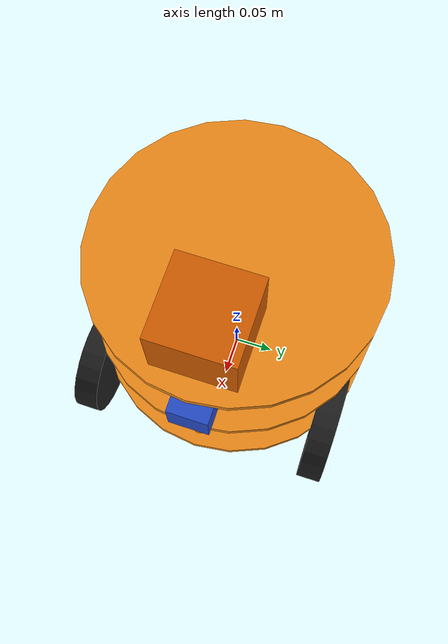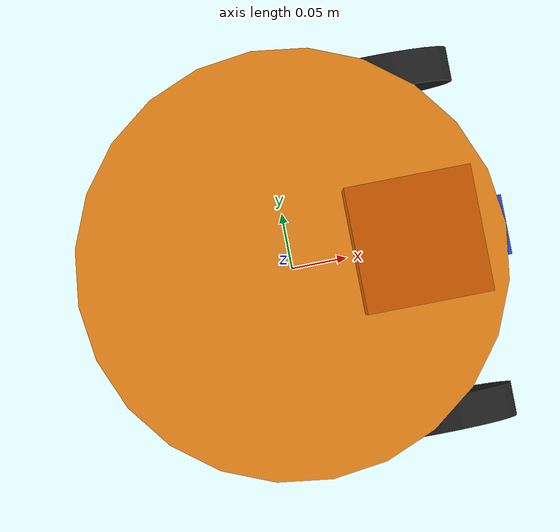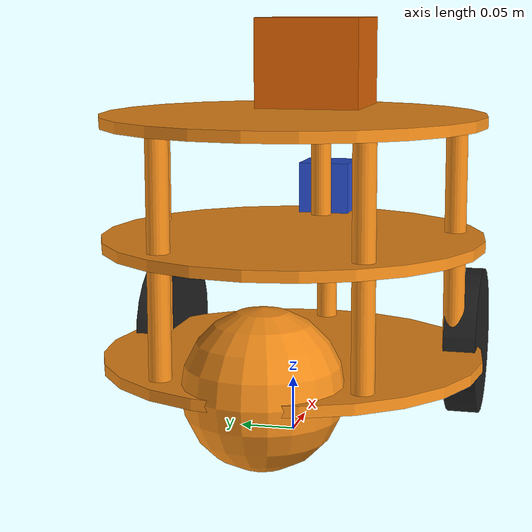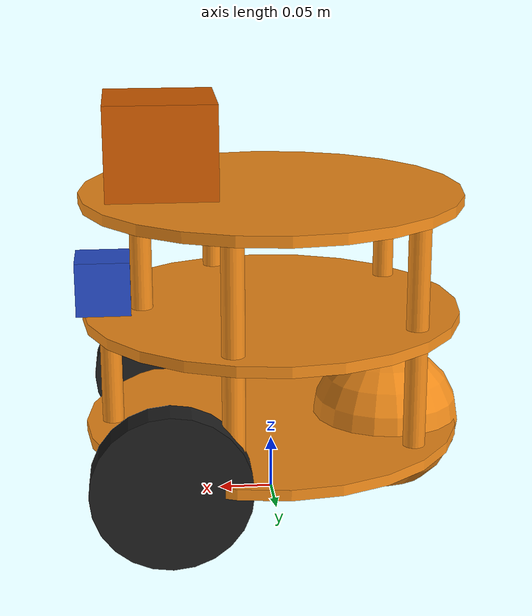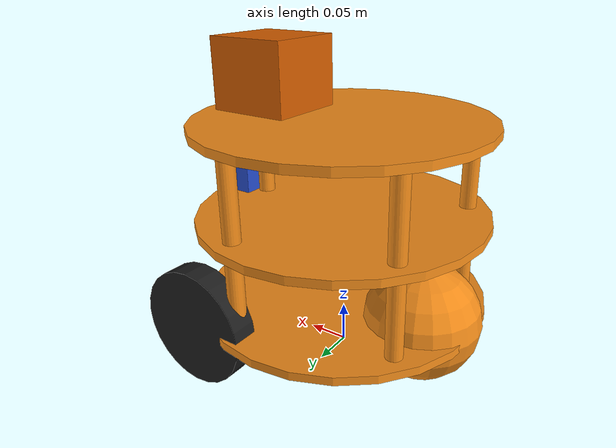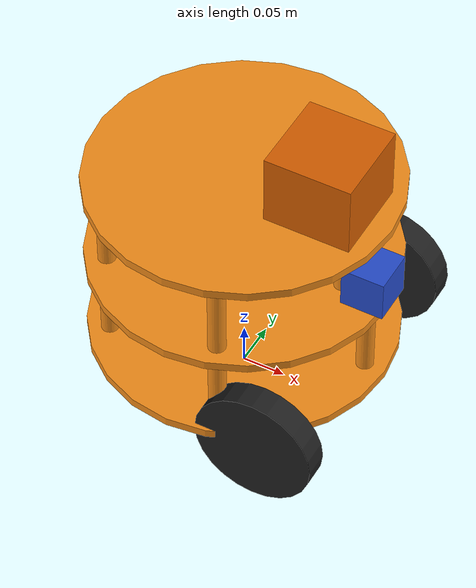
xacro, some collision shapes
<?xml version='1.0'?>

<robot name="my_robot" xmlns:xacro="http://www.ros.org/wiki/xacro">

  <xacro:include filename="$(find my_robot)/urdf/my_robot.gazebo" />
  <link name="robot_footprint"></link>

  <joint name="robot_footprint_joint" type="fixed">
    <origin xyz="0 0 0.07" rpy="0 0 0" />
    <parent link="robot_footprint"/>
    <child link="chassis" />
  </joint>

  <gazebo reference="chassis">
    <material>Gazebo/Orange</material>
  </gazebo>

  <link name='chassis'>
    <pose>0 0 0.07 0 0 0</pose>

    <inertial>
      <mass value="5.0"/>
      <origin xyz="0.0 0 0" rpy=" 0 0 0"/>
      <inertia
          ixx="0.1" ixy="0" ixz="0"
          iyy="0.1" iyz="0"
          izz="0.1"
      />
    </inertial>

    <collision name='collision'>
      <origin xyz="0 0 0.11" rpy=" 0 0 0"/>
      <geometry>
        <cylinder radius="0.175" length="0.23"/>
      </geometry>
    </collision>

    <visual name='chassis_visual'>
      <origin xyz="0 0 0" rpy=" 0 0 0"/>
      <geometry>
        <cylinder radius="0.175" length="0.01"/>
      </geometry>
    </visual>

    <visual name='chassis_visual'>
      <origin xyz="0 0 .11" rpy=" 0 0 0"/>
      <geometry>
        <cylinder radius="0.175" length="0.01"/>
      </geometry>
    </visual>

    <visual name='chassis_visual'>
      <origin xyz="0 0 .22" rpy=" 0 0 0"/>
      <geometry>
        <cylinder radius="0.175" length="0.01"/>
      </geometry>
    </visual>

    <visual name='chassis_visual'>
      <origin xyz="0.15 0.00 .055" rpy=" 0 0 0"/>
      <geometry>
        <cylinder radius="0.01" length="0.10"/>
      </geometry>
    </visual>

    <visual name='chassis_visual'>
      <origin xyz="0.046 0.143 .055" rpy=" 0 0 0"/>
      <geometry>
        <cylinder radius="0.01" length="0.10"/>
      </geometry>
    </visual>

    <visual name='chassis_visual'>
      <origin xyz="-0.121 0.088 .055" rpy=" 0 0 0"/>
      <geometry>
        <cylinder radius="0.01" length="0.10"/>
      </geometry>
    </visual>

    <visual name='chassis_visual'>
      <origin xyz="-0.121 -0.088 .055" rpy=" 0 0 0"/>
      <geometry>
        <cylinder radius="0.01" length="0.10"/>
      </geometry>
    </visual>

    <visual name='chassis_visual'>
      <origin xyz="0.046 -0.143 .055" rpy=" 0 0 0"/>
      <geometry>
        <cylinder radius="0.01" length="0.10"/>
      </geometry>
    </visual>

    <visual name='chassis_visual'>
      <origin xyz="0.12 0.00 .165" rpy=" 0 0 0"/>
      <geometry>
        <cylinder radius="0.01" length="0.10"/>
      </geometry>
    </visual>

    <visual name='chassis_visual'>
      <origin xyz="0.046 0.143 .165" rpy=" 0 0 0"/>
      <geometry>
        <cylinder radius="0.01" length="0.10"/>
      </geometry>
    </visual>

    <visual name='chassis_visual'>
      <origin xyz="-0.121 0.088 .165" rpy=" 0 0 0"/>
      <geometry>
        <cylinder radius="0.01" length="0.10"/>
      </geometry>
    </visual>

    <visual name='chassis_visual'>
      <origin xyz="-0.121 -0.088 .165" rpy=" 0 0 0"/>
      <geometry>
        <cylinder radius="0.01" length="0.10"/>
      </geometry>
    </visual>

    <visual name='chassis_visual'>
      <origin xyz="0.046 -0.143 .165" rpy=" 0 0 0"/>
      <geometry>
        <cylinder radius="0.01" length="0.10"/>
      </geometry>
    </visual>

    <collision name='one_caster_collision'>
      <origin xyz="-0.11 0 0" rpy=" 0 0 0"/>
      <geometry>
        <sphere radius="0.07"/>
      </geometry>
    </collision>

    <visual name='one_caster_visual'>
      <origin xyz="-0.11 0 0.0" rpy=" 0 0 0"/>
      <geometry>
        <sphere radius="0.07"/>
      </geometry>
    </visual>
  </link>

  <gazebo reference="left_wheel">
    <material>Gazebo/Black</material>
  </gazebo>

  <link name="left_wheel">
    <inertial>
      <mass value="5.0"/>
      <origin xyz="0.0 0 0" rpy="0 1.5707 1.5707"/>
      <inertia
          ixx="0.1" ixy="0" ixz="0"
          iyy="0.1" iyz="0"
          izz="0.1"
      />
    </inertial>

    <collision name='left_wheel_collision'>
      <origin xyz="0 0 0" rpy="0 1.5707 1.5707"/>
      <geometry>
	<cylinder radius="0.07" length="0.03"/>
      </geometry>
    </collision>

    <visual name='left_wheel_visual'>
      <origin xyz="0 0 0" rpy="0 1.5707 1.5707"/>
      <geometry>
	<cylinder radius="0.07" length="0.03"/>
      </geometry>
    </visual>
  </link>

  <gazebo reference="right_wheel">
    <material>Gazebo/Black</material>
  </gazebo>

  <link name="right_wheel">
    <inertial>
      <mass value="5.0"/>
      <origin xyz="0.0 0 0" rpy=" 0 1.5707 1.5707"/>
      <inertia
          ixx="0.1" ixy="0" ixz="0"
          iyy="0.1" iyz="0"
          izz="0.1"
      />
    </inertial>

    <collision name='right_wheel_collision'>
      <origin xyz="0 0 0" rpy="0 1.5707 1.5707"/>
      <geometry>
	<cylinder radius="0.07" length="0.03"/>
      </geometry>
    </collision>

    <visual name='right_wheel_visual'>
      <origin xyz="0 0 0" rpy="0 1.5707 1.5707"/>
      <geometry>
	<cylinder radius="0.07" length="0.03"/>
      </geometry>
    </visual>
  </link>

  <joint type="continuous" name="left_wheel_hinge">
    <origin xyz="0.10 0.15 0" rpy="0 0 0"/>
    <child link="left_wheel"/>
    <parent link="chassis"/>
    <axis xyz="0 1 0" rpy="0 0 0"/>
    <limit effort="10000" velocity="1000"/>
    <dynamics damping="1.0" friction="1.0"/>
  </joint>

  <joint type="continuous" name="right_wheel_hinge">
    <origin xyz="0.10 -0.15 0" rpy="0 0 0"/>
    <child link="right_wheel"/>
    <parent link="chassis"/>
    <axis xyz="0 1 0" rpy="0 0 0"/>
    <limit effort="10000" velocity="1000"/>
    <dynamics damping="1.0" friction="1.0"/>
  </joint>

 <gazebo reference="camera">
    <material>Gazebo/Blue</material>
  </gazebo>

  <link name="camera">
    <inertial>
      <mass value="0.1"/>
      <origin xyz="0.0 0 0" rpy="0 0 0"/>
      <inertia
          ixx="1e-6" ixy="0" ixz="0"
          iyy="1e-6" iyz="0"
          izz="1e-6"
      />
    </inertial>

    <collision name='camera_collision'>
      <origin xyz="0 0 0" rpy="0 0 0"/>
      <geometry>
	<box size="0.05 0.05 0.05"/>
      </geometry>
    </collision>

    <visual name='camera_visual'>
      <origin xyz="0 0 0" rpy="0 0 0"/>
      <geometry>
	<box size="0.05 0.05 0.05"/>
      </geometry>
    </visual>
  </link>

  <joint type="fixed" name="camera_joint">
    <origin xyz="0.155 0 .14" rpy="0 0 0"/>
    <child link="camera"/>
    <parent link="chassis"/>
    <axis xyz="0 1 0"/>
  </joint>

  <link name="hokuyo">
    <inertial>
      <mass value="1e-5"/>
      <origin xyz="0 0 0" rpy="0 0 0"/>
      <inertia
          ixx="1e-6" ixy="0" ixz="0"
          iyy="1e-6" iyz="0"
          izz="1e-6"
      />
    </inertial>

    <collision name='hokuyo_collision'>
      <origin xyz="0 0 0" rpy="0 0 0"/>
      <geometry>
	<box size="0.1 0.1 0.1"/>
      </geometry>
    </collision>

    <visual name='hokuyo_visual'>
      <origin xyz="0 0 0" rpy="0 0 0"/>
      <geometry>
	<mesh filename="package://my_robot/meshes/hokuyo.dae"/>
      </geometry>
    </visual>
  </link>

  <joint type="fixed" name="hokuyo_joint">
    <origin xyz="0.10 0 0.260" rpy="0 0 0"/>
    <child link="hokuyo"/>
    <parent link="chassis"/>
    <axis xyz="0 1 0"/>
  </joint>

 <joint name="camera_optical_joint" type="fixed">
    <origin xyz="0 0 0" rpy="-1.5707 0 -1.5707"/>
    <parent link="camera"/>
    <child link="camera_link_optical"/>
  </joint>

  <link name="camera_link_optical">
  </link>

</robot>
